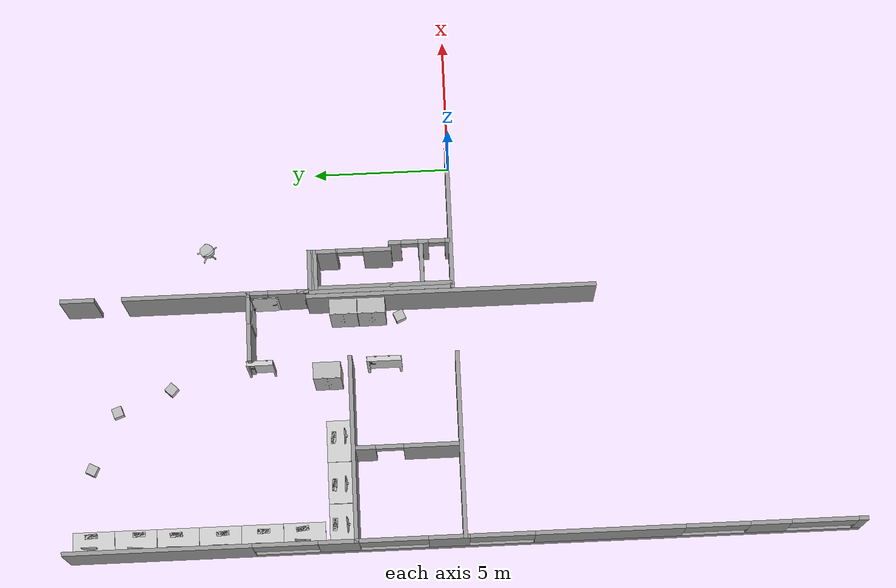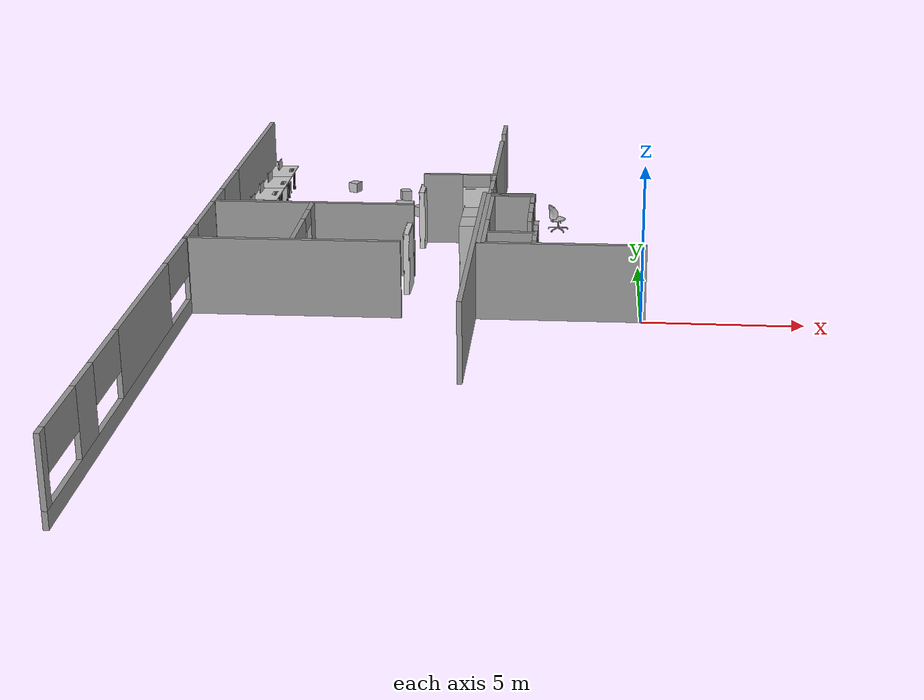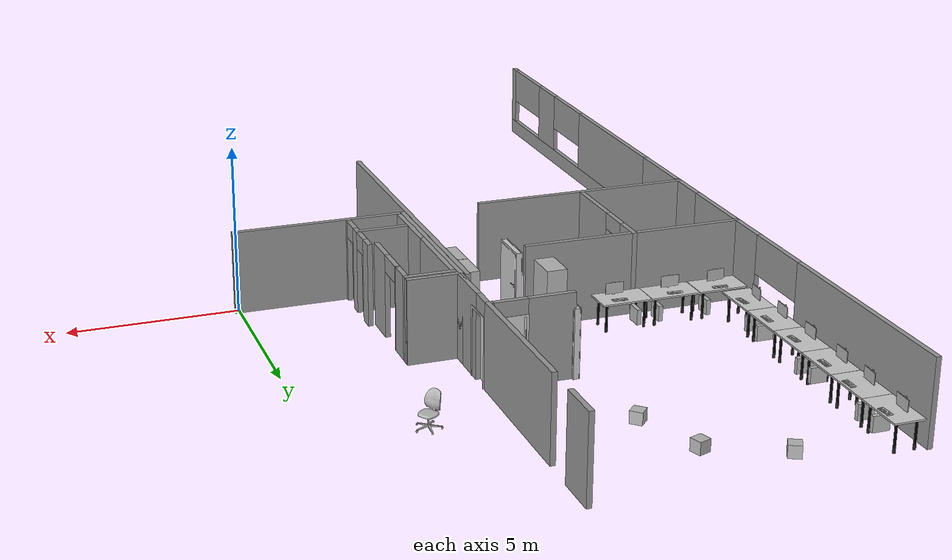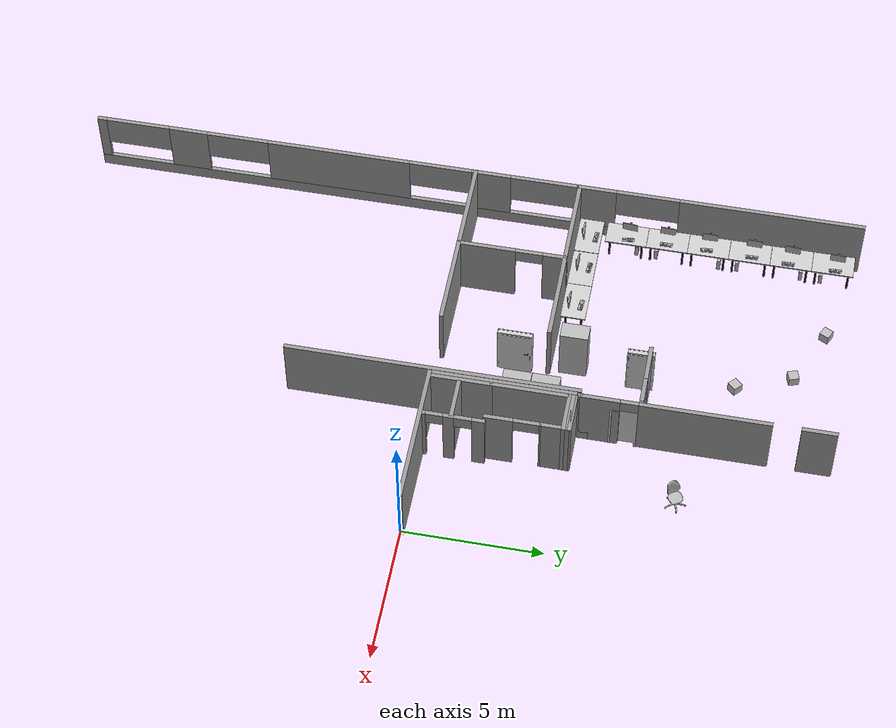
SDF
<sdf version="1.6">
 <world name="default">
  <model name="basement">
   <link name="Wall_1">
    <pose>-14.1254 0.001772 0 0 0 -1.5708</pose>
    <visual name="Wall_1_Visual_0">
     <pose>-10.8889 0 1.25 0 -0 0</pose>
     <geometry><box><size>6.72223 0.15 2.5</size></box></geometry>
     <material>
      <script><uri>file://media/materials/scripts/gazebo.material</uri><name>Gazebo/Grey</name></script>
      <ambient>1 1 1 1</ambient>
     </material>
    </visual>
    <collision name="Wall_1_Collision_0">
     <geometry><box><size>6.72223 0.15 2.5</size></box></geometry>
     <pose>-10.8889 0 1.25 0 -0 0</pose>
    </collision>
    <visual name="Wall_1_Visual_1">
     <pose>3.36112 0 0.25 0 -0 0</pose>
     <geometry><box><size>21.7778 0.15 0.5</size></box></geometry>
     <material>
      <script><uri>file://media/materials/scripts/gazebo.material</uri><name>Gazebo/Grey</name></script>
      <ambient>1 1 1 1</ambient>
     </material>
    </visual>
    <collision name="Wall_1_Collision_1">
     <geometry><box><size>21.7778 0.15 0.5</size></box></geometry>
     <pose>3.36112 0 0.25 0 -0 0</pose>
    </collision>
    <visual name="Wall_1_Visual_2">
     <pose>-4.48488 0 1.5 0 -0 0</pose>
     <geometry><box><size>1.45334 0.15 2</size></box></geometry>
     <material>
      <script><uri>file://media/materials/scripts/gazebo.material</uri><name>Gazebo/Grey</name></script>
      <ambient>1 1 1 1</ambient>
     </material>
    </visual>
    <collision name="Wall_1_Collision_2">
     <geometry><box><size>1.45334 0.15 2</size></box></geometry>
     <pose>-4.48488 0 1.5 0 -0 0</pose>
    </collision>
    <visual name="Wall_1_Visual_3">
     <pose>-0.57841 0 1.5 0 -0 0</pose>
     <geometry><box><size>1.45641 0.15 2</size></box></geometry>
     <material>
      <script><uri>file://media/materials/scripts/gazebo.material</uri><name>Gazebo/Grey</name></script>
      <ambient>1 1 1 1</ambient>
     </material>
    </visual>
    <collision name="Wall_1_Collision_3">
     <geometry><box><size>1.45641 0.15 2</size></box></geometry>
     <pose>-0.57841 0 1.5 0 -0 0</pose>
    </collision>
    <visual name="Wall_1_Visual_4">
     <pose>5.12077 0 1.5 0 -0 0</pose>
     <geometry><box><size>5.31789 0.15 2</size></box></geometry>
     <material>
      <script><uri>file://media/materials/scripts/gazebo.material</uri><name>Gazebo/Grey</name></script>
      <ambient>1 1 1 1</ambient>
     </material>
    </visual>
    <collision name="Wall_1_Collision_4">
     <geometry><box><size>5.31789 0.15 2</size></box></geometry>
     <pose>5.12077 0 1.5 0 -0 0</pose>
    </collision>
    <visual name="Wall_1_Visual_5">
     <pose>10.7967 0 1.5 0 -0 0</pose>
     <geometry><box><size>1.45641 0.15 2</size></box></geometry>
     <material>
      <script><uri>file://media/materials/scripts/gazebo.material</uri><name>Gazebo/Grey</name></script>
      <ambient>1 1 1 1</ambient>
     </material>
    </visual>
    <collision name="Wall_1_Collision_5">
     <geometry><box><size>1.45641 0.15 2</size></box></geometry>
     <pose>10.7967 0 1.5 0 -0 0</pose>
    </collision>
    <visual name="Wall_1_Visual_6">
     <pose>14.0784 0 1.5 0 -0 0</pose>
     <geometry><box><size>0.343295 0.15 2</size></box></geometry>
     <material>
      <script><uri>file://media/materials/scripts/gazebo.material</uri><name>Gazebo/Grey</name></script>
      <ambient>1 1 1 1</ambient>
     </material>
    </visual>
    <collision name="Wall_1_Collision_6">
     <geometry><box><size>0.343295 0.15 2</size></box></geometry>
     <pose>14.0784 0 1.5 0 -0 0</pose>
    </collision>
    <visual name="Wall_1_Visual_7">
     <pose>-6.36966 0 1.9 0 -0 0</pose>
     <geometry><box><size>2.31621 0.15 1.2</size></box></geometry>
     <material>
      <script><uri>file://media/materials/scripts/gazebo.material</uri><name>Gazebo/Grey</name></script>
      <ambient>1 1 1 1</ambient>
     </material>
    </visual>
    <collision name="Wall_1_Collision_7">
     <geometry><box><size>2.31621 0.15 1.2</size></box></geometry>
     <pose>-6.36966 0 1.9 0 -0 0</pose>
    </collision>
    <visual name="Wall_1_Visual_8">
     <pose>-2.53241 0 1.9 0 -0 0</pose>
     <geometry><box><size>2.4516 0.15 1.2</size></box></geometry>
     <material>
      <script><uri>file://media/materials/scripts/gazebo.material</uri><name>Gazebo/Grey</name></script>
      <ambient>1 1 1 1</ambient>
     </material>
    </visual>
    <collision name="Wall_1_Collision_8">
     <geometry><box><size>2.4516 0.15 1.2</size></box></geometry>
     <pose>-2.53241 0 1.9 0 -0 0</pose>
    </collision>
    <visual name="Wall_1_Visual_9">
     <pose>1.30581 0 1.9 0 -0 0</pose>
     <geometry><box><size>2.31203 0.15 1.2</size></box></geometry>
     <material>
      <script><uri>file://media/materials/scripts/gazebo.material</uri><name>Gazebo/Grey</name></script>
      <ambient>1 1 1 1</ambient>
     </material>
    </visual>
    <collision name="Wall_1_Collision_9">
     <geometry><box><size>2.31203 0.15 1.2</size></box></geometry>
     <pose>1.30581 0 1.9 0 -0 0</pose>
    </collision>
    <visual name="Wall_1_Visual_10">
     <pose>8.9241 0 1.9 0 -0 0</pose>
     <geometry><box><size>2.28877 0.15 1.2</size></box></geometry>
     <material>
      <script><uri>file://media/materials/scripts/gazebo.material</uri><name>Gazebo/Grey</name></script>
      <ambient>1 1 1 1</ambient>
     </material>
    </visual>
    <collision name="Wall_1_Collision_10">
     <geometry><box><size>2.28877 0.15 1.2</size></box></geometry>
     <pose>8.9241 0 1.9 0 -0 0</pose>
    </collision>
    <visual name="Wall_1_Visual_11">
     <pose>12.7158 0 1.9 0 -0 0</pose>
     <geometry><box><size>2.38181 0.15 1.2</size></box></geometry>
     <material>
      <script><uri>file://media/materials/scripts/gazebo.material</uri><name>Gazebo/Grey</name></script>
      <ambient>1 1 1 1</ambient>
     </material>
    </visual>
    <collision name="Wall_1_Collision_11">
     <geometry><box><size>2.38181 0.15 1.2</size></box></geometry>
     <pose>12.7158 0 1.9 0 -0 0</pose>
    </collision>
   </link>
   <link name="Wall_146">
    <collision name="Wall_146_Collision">
     <geometry><box><size>5.25 0.15 2.5</size></box></geometry>
     <pose>0 0 1.25 0 -0 0</pose>
    </collision>
    <visual name="Wall_146_Visual">
     <pose>0 0 1.25 0 -0 0</pose>
     <geometry><box><size>5.25 0.15 2.5</size></box></geometry>
     <material>
      <script><uri>file://media/materials/scripts/gazebo.material</uri><name>Gazebo/Grey</name></script>
      <ambient>1 1 1 1</ambient>
     </material>
    </visual>
    <pose>-5.04892 2.61682 0 0 -0 1.5708</pose>
   </link>
   <link name="Wall_148">
    <collision name="Wall_148_Collision">
     <geometry><box><size>1.5 0.15 2.5</size></box></geometry>
     <pose>0 0 1.25 0 -0 0</pose>
    </collision>
    <visual name="Wall_148_Visual">
     <pose>0 0 1.25 0 -0 0</pose>
     <geometry><box><size>1.5 0.15 2.5</size></box></geometry>
     <material>
      <script><uri>file://media/materials/scripts/gazebo.material</uri><name>Gazebo/Grey</name></script>
      <ambient>1 1 1 1</ambient>
     </material>
    </visual>
    <pose>-4.23612 5.13065 0 0 -0 0</pose>
   </link>
   <link name="Wall_150">
    <collision name="Wall_150_Collision">
     <geometry><box><size>1.5 0.15 2.5</size></box></geometry>
     <pose>0 0 1.25 0 -0 0</pose>
    </collision>
    <visual name="Wall_150_Visual">
     <pose>0 0 1.25 0 -0 0</pose>
     <geometry><box><size>1.5 0.15 2.5</size></box></geometry>
     <material>
      <script><uri>file://media/materials/scripts/gazebo.material</uri><name>Gazebo/Grey</name></script>
      <ambient>1 1 1 1</ambient>
     </material>
    </visual>
    <pose>-4.23669 5.20302 0 0 -0 0</pose>
   </link>
   <link name="Wall_152">
    <collision name="Wall_152_Collision">
     <geometry><box><size>5.25 0.15 2.5</size></box></geometry>
     <pose>0 0 1.25 0 -0 0</pose>
    </collision>
    <visual name="Wall_152_Visual">
     <pose>0 0 1.25 0 -0 0</pose>
     <geometry><box><size>5.25 0.15 2.5</size></box></geometry>
     <material>
      <script><uri>file://media/materials/scripts/gazebo.material</uri><name>Gazebo/Grey</name></script>
      <ambient>1 1 1 1</ambient>
     </material>
    </visual>
    <pose>-2.49774 0.066434 0 0 -0 0</pose>
   </link>
   <link name="Wall_17">
    <collision name="Wall_17_Collision">
     <geometry><box><size>6.75 0.15 2.5</size></box></geometry>
     <pose>0 0 1.25 0 -0 0</pose>
    </collision>
    <visual name="Wall_17_Visual">
     <pose>0 0 1.25 0 -0 0</pose>
     <geometry><box><size>6.75 0.15 2.5</size></box></geometry>
     <material>
      <script><uri>file://media/materials/scripts/gazebo.material</uri><name>Gazebo/Grey</name></script>
      <ambient>1 1 1 1</ambient>
     </material>
    </visual>
    <pose>-10.8156 0.004484 0 0 -0 0</pose>
   </link>
   <link name="Wall_19">
    <collision name="Wall_19_Collision">
     <geometry><box><size>6.75 0.15 2.5</size></box></geometry>
     <pose>0 0 1.25 0 -0 0</pose>
    </collision>
    <visual name="Wall_19_Visual">
     <pose>0 0 1.25 0 -0 0</pose>
     <geometry><box><size>6.75 0.15 2.5</size></box></geometry>
     <material>
      <script><uri>file://media/materials/scripts/gazebo.material</uri><name>Gazebo/Grey</name></script>
      <ambient>1 1 1 1</ambient>
     </material>
    </visual>
    <pose>-10.8156 3.85656 0 0 -0 0</pose>
   </link>
   <link name="Wall_21">
    <pose>-10.8088 1.93156 0 0 0 -1.5708</pose>
    <visual name="Wall_21_Visual_0">
     <pose>-1.56265 0 1.25 0 -0 0</pose>
     <geometry><box><size>0.874704 0.15 2.5</size></box></geometry>
     <material>
      <script><uri>file://media/materials/scripts/gazebo.material</uri><name>Gazebo/Grey</name></script>
      <ambient>1 1 1 1</ambient>
     </material>
    </visual>
    <collision name="Wall_21_Collision_0">
     <geometry><box><size>0.874704 0.15 2.5</size></box></geometry>
     <pose>-1.56265 0 1.25 0 -0 0</pose>
    </collision>
    <visual name="Wall_21_Visual_1">
     <pose>0.933876 0 1.25 0 -0 0</pose>
     <geometry><box><size>2.13225 0.15 2.5</size></box></geometry>
     <material>
      <script><uri>file://media/materials/scripts/gazebo.material</uri><name>Gazebo/Grey</name></script>
      <ambient>1 1 1 1</ambient>
     </material>
    </visual>
    <collision name="Wall_21_Collision_1">
     <geometry><box><size>2.13225 0.15 2.5</size></box></geometry>
     <pose>0.933876 0 1.25 0 -0 0</pose>
    </collision>
    <visual name="Wall_21_Visual_2">
     <pose>-0.628773 0 2.25 0 -0 0</pose>
     <geometry><box><size>0.993048 0.15 0.5</size></box></geometry>
     <material>
      <script><uri>file://media/materials/scripts/gazebo.material</uri><name>Gazebo/Grey</name></script>
      <ambient>1 1 1 1</ambient>
     </material>
    </visual>
    <collision name="Wall_21_Collision_2">
     <geometry><box><size>0.993048 0.15 0.5</size></box></geometry>
     <pose>-0.628773 0 2.25 0 -0 0</pose>
    </collision>
   </link>
   <link name="Wall_23">
    <pose>-5.00676 8.62969 0 0 0 -1.5708</pose>
    <visual name="Wall_23_Visual_0">
     <pose>-1.06412 0 1.25 0 -0 0</pose>
     <geometry><box><size>4.62176 0.15 2.5</size></box></geometry>
     <material>
      <script><uri>file://media/materials/scripts/gazebo.material</uri><name>Gazebo/Grey</name></script>
      <ambient>1 1 1 1</ambient>
     </material>
    </visual>
    <collision name="Wall_23_Collision_0">
     <geometry><box><size>4.62176 0.15 2.5</size></box></geometry>
     <pose>-1.06412 0 1.25 0 -0 0</pose>
    </collision>
    <visual name="Wall_23_Visual_1">
     <pose>2.63296 0 1.25 0 -0 0</pose>
     <geometry><box><size>1.48408 0.15 2.5</size></box></geometry>
     <material>
      <script><uri>file://media/materials/scripts/gazebo.material</uri><name>Gazebo/Grey</name></script>
      <ambient>1 1 1 1</ambient>
     </material>
    </visual>
    <collision name="Wall_23_Collision_1">
     <geometry><box><size>1.48408 0.15 2.5</size></box></geometry>
     <pose>2.63296 0 1.25 0 -0 0</pose>
    </collision>
    <visual name="Wall_23_Visual_2">
     <pose>3.15649 0 1.25 0 -0 0</pose>
     <geometry><box><size>0.437027 0.15 2.5</size></box></geometry>
     <material>
      <script><uri>file://media/materials/scripts/gazebo.material</uri><name>Gazebo/Grey</name></script>
      <ambient>1 1 1 1</ambient>
     </material>
    </visual>
    <collision name="Wall_23_Collision_2">
     <geometry><box><size>0.437027 0.15 2.5</size></box></geometry>
     <pose>3.15649 0 1.25 0 -0 0</pose>
    </collision>
    <visual name="Wall_23_Visual_3">
     <pose>1.56762 0 2.25 0 -0 0</pose>
     <geometry><box><size>0.641714 0.15 0.5</size></box></geometry>
     <material>
      <script><uri>file://media/materials/scripts/gazebo.material</uri><name>Gazebo/Grey</name></script>
      <ambient>1 1 1 1</ambient>
     </material>
    </visual>
    <collision name="Wall_23_Collision_3">
     <geometry><box><size>0.641714 0.15 0.5</size></box></geometry>
     <pose>1.56762 0 2.25 0 -0 0</pose>
    </collision>
   </link>
   <link name="Wall_25">
    <pose>-6.22027 7.45768 0 0 -0 0</pose>
    <visual name="Wall_25_Visual_0">
     <pose>-0.572125 0 1.25 0 -0 0</pose>
     <geometry><box><size>1.35575 0.15 2.5</size></box></geometry>
     <material>
      <script><uri>file://media/materials/scripts/gazebo.material</uri><name>Gazebo/Grey</name></script>
      <ambient>1 1 1 1</ambient>
     </material>
    </visual>
    <collision name="Wall_25_Collision_0">
     <geometry><box><size>1.35575 0.15 2.5</size></box></geometry>
     <pose>-0.572125 0 1.25 0 -0 0</pose>
    </collision>
    <visual name="Wall_25_Visual_1">
     <pose>1.16237 0 1.25 0 -0 0</pose>
     <geometry><box><size>0.17525 0.15 2.5</size></box></geometry>
     <material>
      <script><uri>file://media/materials/scripts/gazebo.material</uri><name>Gazebo/Grey</name></script>
      <ambient>1 1 1 1</ambient>
     </material>
    </visual>
    <collision name="Wall_25_Collision_1">
     <geometry><box><size>0.17525 0.15 2.5</size></box></geometry>
     <pose>1.16237 0 1.25 0 -0 0</pose>
    </collision>
    <visual name="Wall_25_Visual_2">
     <pose>0.59025 0 2.25 0 -0 0</pose>
     <geometry><box><size>0.969 0.15 0.5</size></box></geometry>
     <material>
      <script><uri>file://media/materials/scripts/gazebo.material</uri><name>Gazebo/Grey</name></script>
      <ambient>1 1 1 1</ambient>
     </material>
    </visual>
    <collision name="Wall_25_Collision_2">
     <geometry><box><size>0.969 0.15 0.5</size></box></geometry>
     <pose>0.59025 0 2.25 0 -0 0</pose>
    </collision>
   </link>
   <link name="Wall_27">
    <collision name="Wall_27_Collision">
     <geometry><box><size>1.25 0.15 2.5</size></box></geometry>
     <pose>0 0 1.25 0 -0 0</pose>
    </collision>
    <visual name="Wall_27_Visual">
     <pose>0 0 1.25 0 -0 0</pose>
     <geometry><box><size>1.25 0.15 2.5</size></box></geometry>
     <material>
      <script><uri>file://media/materials/scripts/gazebo.material</uri><name>Gazebo/Grey</name></script>
      <ambient>1 1 1 1</ambient>
     </material>
    </visual>
    <pose>-4.99983 13.6109 0 0 -0 1.5708</pose>
   </link>
   <link name="Wall_29">
    <collision name="Wall_29_Collision">
     <geometry><box><size>10.5 0.15 2.5</size></box></geometry>
     <pose>0 0 1.25 0 -0 0</pose>
    </collision>
    <visual name="Wall_29_Visual">
     <pose>0 0 1.25 0 -0 0</pose>
     <geometry><box><size>10.5 0.15 2.5</size></box></geometry>
     <material>
      <script><uri>file://media/materials/scripts/gazebo.material</uri><name>Gazebo/Grey</name></script>
      <ambient>1 1 1 1</ambient>
     </material>
    </visual>
    <pose>-5.20099 0.119525 0 0 0 -1.5708</pose>
   </link>
   <link name="Wall_47">
    <collision name="Wall_47_Collision">
     <geometry><box><size>2.75 0.15 2.5</size></box></geometry>
     <pose>0 0 1.25 0 -0 0</pose>
    </collision>
    <visual name="Wall_47_Visual">
     <pose>0 0 1.25 0 -0 0</pose>
     <geometry><box><size>2.75 0.15 2.5</size></box></geometry>
     <material>
      <script><uri>file://media/materials/scripts/gazebo.material</uri><name>Gazebo/Grey</name></script>
      <ambient>1 1 1 1</ambient>
     </material>
    </visual>
    <pose>-4.91322 3.5855 0 0 0 -1.5708</pose>
   </link>
   <link name="Wall_55">
    <collision name="Wall_55_Collision">
     <geometry><box><size>0.75 0.15 2.5</size></box></geometry>
     <pose>0 0 1.25 0 -0 0</pose>
    </collision>
    <visual name="Wall_55_Visual">
     <pose>0 0 1.25 0 -0 0</pose>
     <geometry><box><size>0.75 0.15 2.5</size></box></geometry>
     <material>
      <script><uri>file://media/materials/scripts/gazebo.material</uri><name>Gazebo/Grey</name></script>
      <ambient>1 1 1 1</ambient>
     </material>
    </visual>
    <pose>-3.56641 4.59591 0 0 0 -1.5708</pose>
   </link>
   <link name="Wall_57">
    <collision name="Wall_57_Collision">
     <geometry><box><size>1.5 0.15 2.5</size></box></geometry>
     <pose>0 0 1.25 0 -0 0</pose>
    </collision>
    <visual name="Wall_57_Visual">
     <pose>0 0 1.25 0 -0 0</pose>
     <geometry><box><size>1.5 0.15 2.5</size></box></geometry>
     <material>
      <script><uri>file://media/materials/scripts/gazebo.material</uri><name>Gazebo/Grey</name></script>
      <ambient>1 1 1 1</ambient>
     </material>
    </visual>
    <pose>-4.23706 4.99373 0 0 -0 0</pose>
   </link>
   <link name="Wall_59">
    <pose>-3.56584 3.2285 0 0 -0 1.5708</pose>
    <visual name="Wall_59_Visual_0">
     <pose>-0.488849 0 1.25 0 -0 0</pose>
     <geometry><box><size>1.0223 0.15 2.5</size></box></geometry>
     <material>
      <script><uri>file://media/materials/scripts/gazebo.material</uri><name>Gazebo/Grey</name></script>
      <ambient>1 1 1 1</ambient>
     </material>
    </visual>
    <collision name="Wall_59_Collision_0">
     <geometry><box><size>1.0223 0.15 2.5</size></box></geometry>
     <pose>-0.488849 0 1.25 0 -0 0</pose>
    </collision>
    <visual name="Wall_59_Visual_1">
     <pose>0.972494 0 1.25 0 -0 0</pose>
     <geometry><box><size>0.055013 0.15 2.5</size></box></geometry>
     <material>
      <script><uri>file://media/materials/scripts/gazebo.material</uri><name>Gazebo/Grey</name></script>
      <ambient>1 1 1 1</ambient>
     </material>
    </visual>
    <collision name="Wall_59_Collision_1">
     <geometry><box><size>0.055013 0.15 2.5</size></box></geometry>
     <pose>0.972494 0 1.25 0 -0 0</pose>
    </collision>
    <visual name="Wall_59_Visual_2">
     <pose>0.483645 0 2.25 0 -0 0</pose>
     <geometry><box><size>0.922684 0.15 0.5</size></box></geometry>
     <material>
      <script><uri>file://media/materials/scripts/gazebo.material</uri><name>Gazebo/Grey</name></script>
      <ambient>1 1 1 1</ambient>
     </material>
    </visual>
    <collision name="Wall_59_Collision_2">
     <geometry><box><size>0.922684 0.15 0.5</size></box></geometry>
     <pose>0.483645 0 2.25 0 -0 0</pose>
    </collision>
   </link>
   <link name="Wall_61">
    <collision name="Wall_61_Collision">
     <geometry><box><size>2.25 0.15 2.5</size></box></geometry>
     <pose>0 0 1.25 0 -0 0</pose>
    </collision>
    <visual name="Wall_61_Visual">
     <pose>0 0 1.25 0 -0 0</pose>
     <geometry><box><size>2.25 0.15 2.5</size></box></geometry>
     <material>
      <script><uri>file://media/materials/scripts/gazebo.material</uri><name>Gazebo/Grey</name></script>
      <ambient>1 1 1 1</ambient>
     </material>
    </visual>
    <pose>-4.90974 1.19358 0 0 -0 1.5708</pose>
   </link>
   <link name="Wall_67">
    <pose>-3.33938 1.20265 0 0 -0 1.5708</pose>
    <visual name="Wall_67_Visual_0">
     <pose>-1.03247 0 1.25 0 -0 0</pose>
     <geometry><box><size>0.185068 0.15 2.5</size></box></geometry>
     <material>
      <script><uri>file://media/materials/scripts/gazebo.material</uri><name>Gazebo/Grey</name></script>
      <ambient>1 1 1 1</ambient>
     </material>
    </visual>
    <collision name="Wall_67_Collision_0">
     <geometry><box><size>0.185068 0.15 2.5</size></box></geometry>
     <pose>-1.03247 0 1.25 0 -0 0</pose>
    </collision>
    <visual name="Wall_67_Visual_1">
     <pose>-0.143595 0 1.25 0 -0 0</pose>
     <geometry><box><size>0.386655 0.15 2.5</size></box></geometry>
     <material>
      <script><uri>file://media/materials/scripts/gazebo.material</uri><name>Gazebo/Grey</name></script>
      <ambient>1 1 1 1</ambient>
     </material>
    </visual>
    <collision name="Wall_67_Collision_1">
     <geometry><box><size>0.386655 0.15 2.5</size></box></geometry>
     <pose>-0.143595 0 1.25 0 -0 0</pose>
    </collision>
    <visual name="Wall_67_Visual_2">
     <pose>0.892631 0 1.25 0 -0 0</pose>
     <geometry><box><size>0.464739 0.15 2.5</size></box></geometry>
     <material>
      <script><uri>file://media/materials/scripts/gazebo.material</uri><name>Gazebo/Grey</name></script>
      <ambient>1 1 1 1</ambient>
     </material>
    </visual>
    <collision name="Wall_67_Collision_2">
     <geometry><box><size>0.464739 0.15 2.5</size></box></geometry>
     <pose>0.892631 0 1.25 0 -0 0</pose>
    </collision>
    <visual name="Wall_67_Visual_3">
     <pose>-0.638427 0 2.25 0 -0 0</pose>
     <geometry><box><size>0.60301 0.15 0.5</size></box></geometry>
     <material>
      <script><uri>file://media/materials/scripts/gazebo.material</uri><name>Gazebo/Grey</name></script>
      <ambient>1 1 1 1</ambient>
     </material>
    </visual>
    <collision name="Wall_67_Collision_3">
     <geometry><box><size>0.60301 0.15 0.5</size></box></geometry>
     <pose>-0.638427 0 2.25 0 -0 0</pose>
    </collision>
    <visual name="Wall_67_Visual_4">
     <pose>0.354997 0 2.25 0 -0 0</pose>
     <geometry><box><size>0.610528 0.15 0.5</size></box></geometry>
     <material>
      <script><uri>file://media/materials/scripts/gazebo.material</uri><name>Gazebo/Grey</name></script>
      <ambient>1 1 1 1</ambient>
     </material>
    </visual>
    <collision name="Wall_67_Collision_4">
     <geometry><box><size>0.610528 0.15 0.5</size></box></geometry>
     <pose>0.354997 0 2.25 0 -0 0</pose>
    </collision>
   </link>
   <link name="Wall_69">
    <collision name="Wall_69_Collision">
     <geometry><box><size>1.5 0.15 2.5</size></box></geometry>
     <pose>0 0 1.25 0 -0 0</pose>
    </collision>
    <visual name="Wall_69_Visual">
     <pose>0 0 1.25 0 -0 0</pose>
     <geometry><box><size>1.5 0.15 2.5</size></box></geometry>
     <material>
      <script><uri>file://media/materials/scripts/gazebo.material</uri><name>Gazebo/Grey</name></script>
      <ambient>1 1 1 1</ambient>
     </material>
    </visual>
    <pose>-4.10188 1.14165 0 0 -0 0</pose>
   </link>
   <static>1</static>
  </model>
  <model name="wardrobe">
   <link name="link">
    <visual name="visual">
     <geometry><mesh><uri>model://cabinet/meshes/cabinet.dae</uri><scale>1 1 1</scale></mesh></geometry>
    </visual>
    <collision name="collision">
     <geometry><mesh><uri>model://cabinet/meshes/cabinet.dae</uri><scale>1 1 1</scale></mesh></geometry>
    </collision>
   </link>
   <static>1</static>
   <pose>-7.88879 4.71222 0 0 0 -1.5707</pose>
  </model>
  <model name="wardrobe_0">
   <link name="link">
    <visual name="visual">
     <geometry><mesh><uri>model://cabinet/meshes/cabinet.dae</uri><scale>1 1 1</scale></mesh></geometry>
    </visual>
    <collision name="collision">
     <geometry><mesh><uri>model://cabinet/meshes/cabinet.dae</uri><scale>1 1 1</scale></mesh></geometry>
    </collision>
   </link>
   <static>1</static>
   <pose>-5.55 4.05207 0 0 0 -1.5707</pose>
  </model>
  <model name="wardrobe_1">
   <link name="link">
    <visual name="visual">
     <geometry><mesh><uri>model://cabinet/meshes/cabinet.dae</uri><scale>1 1 1</scale></mesh></geometry>
    </visual>
    <collision name="collision">
     <geometry><mesh><uri>model://cabinet/meshes/cabinet.dae</uri><scale>1 1 1</scale></mesh></geometry>
    </collision>
   </link>
   <static>1</static>
   <pose>-5.55012 3.03744 0 0 0 -1.5707</pose>
  </model>
  <model name="office_table">
   <link name="link">
    <visual name="visual">
     <geometry><mesh><uri>model://office_table/meshes/office_table.dae</uri><scale>1 1 1</scale></mesh></geometry>
    </visual>
    <collision name="collision">
     <geometry><mesh><uri>model://office_table/meshes/office_table.dae</uri><scale>1 1 1</scale></mesh></geometry>
    </collision>
   </link>
   <static>1</static>
   <pose>-13.5998 10.3558 0 0 -0 1.5707</pose>
  </model>
  <model name="office_table_0">
   <link name="link">
    <visual name="visual">
     <geometry><mesh><uri>model://office_table/meshes/office_table.dae</uri><scale>1 1 1</scale></mesh></geometry>
    </visual>
    <collision name="collision">
     <geometry><mesh><uri>model://office_table/meshes/office_table.dae</uri><scale>1 1 1</scale></mesh></geometry>
    </collision>
   </link>
   <static>1</static>
   <pose>-13.6 5.80688 0 0 -0 1.5707</pose>
  </model>
  <model name="office_table_1">
   <link name="link">
    <visual name="visual">
     <geometry><mesh><uri>model://office_table/meshes/office_table.dae</uri><scale>1 1 1</scale></mesh></geometry>
    </visual>
    <collision name="collision">
     <geometry><mesh><uri>model://office_table/meshes/office_table.dae</uri><scale>1 1 1</scale></mesh></geometry>
    </collision>
   </link>
   <static>1</static>
   <pose>-13.6 7.32319 0 0 -0 1.5707</pose>
  </model>
  <model name="office_table_2">
   <link name="link">
    <visual name="visual">
     <geometry><mesh><uri>model://office_table/meshes/office_table.dae</uri><scale>1 1 1</scale></mesh></geometry>
    </visual>
    <collision name="collision">
     <geometry><mesh><uri>model://office_table/meshes/office_table.dae</uri><scale>1 1 1</scale></mesh></geometry>
    </collision>
   </link>
   <static>1</static>
   <pose>-10.1891 4.4 0 0 -0 0</pose>
  </model>
  <model name="office_table_3">
   <link name="link">
    <visual name="visual">
     <geometry><mesh><uri>model://office_table/meshes/office_table.dae</uri><scale>1 1 1</scale></mesh></geometry>
    </visual>
    <collision name="collision">
     <geometry><mesh><uri>model://office_table/meshes/office_table.dae</uri><scale>1 1 1</scale></mesh></geometry>
    </collision>
   </link>
   <static>1</static>
   <pose>-13.5997 11.8755 0 0 -0 1.5707</pose>
  </model>
  <model name="office_table_4">
   <link name="link">
    <visual name="visual">
     <geometry><mesh><uri>model://office_table/meshes/office_table.dae</uri><scale>1 1 1</scale></mesh></geometry>
    </visual>
    <collision name="collision">
     <geometry><mesh><uri>model://office_table/meshes/office_table.dae</uri><scale>1 1 1</scale></mesh></geometry>
    </collision>
   </link>
   <static>1</static>
   <pose>-13.5998 8.83935 0 0 -0 1.5707</pose>
  </model>
  <model name="office_table_5">
   <link name="link">
    <visual name="visual">
     <geometry><mesh><uri>model://office_table/meshes/office_table.dae</uri><scale>1 1 1</scale></mesh></geometry>
    </visual>
    <collision name="collision">
     <geometry><mesh><uri>model://office_table/meshes/office_table.dae</uri><scale>1 1 1</scale></mesh></geometry>
    </collision>
   </link>
   <static>1</static>
   <pose>-11.7071 4.4 0 0 -0 0</pose>
  </model>
  <model name="office_table_6">
   <link name="link">
    <visual name="visual">
     <geometry><mesh><uri>model://office_table/meshes/office_table.dae</uri><scale>1 1 1</scale></mesh></geometry>
    </visual>
    <collision name="collision">
     <geometry><mesh><uri>model://office_table/meshes/office_table.dae</uri><scale>1 1 1</scale></mesh></geometry>
    </collision>
   </link>
   <static>1</static>
   <pose>-13.2354 4.4 0 0 -0 0</pose>
  </model>
  <model name="office_table_7">
   <link name="link">
    <visual name="visual">
     <geometry><mesh><uri>model://office_table/meshes/office_table.dae</uri><scale>1 1 1</scale></mesh></geometry>
    </visual>
    <collision name="collision">
     <geometry><mesh><uri>model://office_table/meshes/office_table.dae</uri><scale>1 1 1</scale></mesh></geometry>
    </collision>
   </link>
   <static>1</static>
   <pose>-13.5998 13.393 0 0 -0 1.5707</pose>
  </model>
  <model name="pc">
   <link name="link">
    <visual name="visual">
     <geometry><mesh><uri>model://pc/meshes/pc.dae</uri><scale>1 1 1</scale></mesh></geometry>
    </visual>
    <collision name="collision">
     <geometry><mesh><uri>model://pc/meshes/pc.dae</uri><scale>1 1 1</scale></mesh></geometry>
    </collision>
   </link>
   <static>1</static>
   <pose>-11.3419 4.48606 0 0 -0 3.141</pose>
  </model>
  <model name="pc_0">
   <link name="link">
    <visual name="visual">
     <geometry><mesh><uri>model://pc/meshes/pc.dae</uri><scale>1 1 1</scale></mesh></geometry>
    </visual>
    <collision name="collision">
     <geometry><mesh><uri>model://pc/meshes/pc.dae</uri><scale>1 1 1</scale></mesh></geometry>
    </collision>
   </link>
   <static>1</static>
   <pose>-12.8626 4.49995 0 0 -0 3.141</pose>
  </model>
  <model name="pc_1">
   <link name="link">
    <visual name="visual">
     <geometry><mesh><uri>model://pc/meshes/pc.dae</uri><scale>1 1 1</scale></mesh></geometry>
    </visual>
    <collision name="collision">
     <geometry><mesh><uri>model://pc/meshes/pc.dae</uri><scale>1 1 1</scale></mesh></geometry>
    </collision>
   </link>
   <static>1</static>
   <pose>-10.6413 4.52563 0 0 -0 3.141</pose>
  </model>
  <model name="pc_2">
   <link name="link">
    <visual name="visual">
     <geometry><mesh><uri>model://pc/meshes/pc.dae</uri><scale>1 1 1</scale></mesh></geometry>
    </visual>
    <collision name="collision">
     <geometry><mesh><uri>model://pc/meshes/pc.dae</uri><scale>1 1 1</scale></mesh></geometry>
    </collision>
   </link>
   <static>1</static>
   <pose>-13.5783 6.16697 0 0 -0 1.5707</pose>
  </model>
  <model name="pc_3">
   <link name="link">
    <visual name="visual">
     <geometry><mesh><uri>model://pc/meshes/pc.dae</uri><scale>1 1 1</scale></mesh></geometry>
    </visual>
    <collision name="collision">
     <geometry><mesh><uri>model://pc/meshes/pc.dae</uri><scale>1 1 1</scale></mesh></geometry>
    </collision>
   </link>
   <static>1</static>
   <pose>-13.5256 6.88608 0 0 -0 1.5707</pose>
  </model>
  <model name="pc_4">
   <link name="link">
    <visual name="visual">
     <geometry><mesh><uri>model://pc/meshes/pc.dae</uri><scale>1 1 1</scale></mesh></geometry>
    </visual>
    <collision name="collision">
     <geometry><mesh><uri>model://pc/meshes/pc.dae</uri><scale>1 1 1</scale></mesh></geometry>
    </collision>
   </link>
   <static>1</static>
   <pose>-13.5073 9.87994 0 0 -0 1.5707</pose>
  </model>
  <model name="pc_5">
   <link name="link">
    <visual name="visual">
     <geometry><mesh><uri>model://pc/meshes/pc.dae</uri><scale>1 1 1</scale></mesh></geometry>
    </visual>
    <collision name="collision">
     <geometry><mesh><uri>model://pc/meshes/pc.dae</uri><scale>1 1 1</scale></mesh></geometry>
    </collision>
   </link>
   <static>1</static>
   <pose>-13.5206 12.2188 0 0 -0 1.5707</pose>
  </model>
  <model name="pc_6">
   <link name="link">
    <visual name="visual">
     <geometry><mesh><uri>model://pc/meshes/pc.dae</uri><scale>1 1 1</scale></mesh></geometry>
    </visual>
    <collision name="collision">
     <geometry><mesh><uri>model://pc/meshes/pc.dae</uri><scale>1 1 1</scale></mesh></geometry>
    </collision>
   </link>
   <static>1</static>
   <pose>-13.5138 12.9492 0 0 -0 1.5707</pose>
  </model>
  <model name="pc_7">
   <link name="link">
    <visual name="visual">
     <geometry><mesh><uri>model://pc/meshes/pc.dae</uri><scale>1 1 1</scale></mesh></geometry>
    </visual>
    <collision name="collision">
     <geometry><mesh><uri>model://pc/meshes/pc.dae</uri><scale>1 1 1</scale></mesh></geometry>
    </collision>
   </link>
   <static>1</static>
   <pose>-13.4711 9.2109 0 0 -0 1.5707</pose>
  </model>
  <model name="monitor">
   <link name="link">
    <visual name="visual">
     <geometry><mesh><uri>model://monitor/meshes/monitor.dae</uri><scale>1 1 1</scale></mesh></geometry>
    </visual>
    <collision name="collision">
     <geometry><mesh><uri>model://monitor/meshes/monitor.dae</uri><scale>1 1 1</scale></mesh></geometry>
    </collision>
   </link>
   <static>1</static>
   <pose>-13.3236 4.21798 1 0 0 -3.07367</pose>
  </model>
  <model name="monitor_0">
   <link name="link">
    <visual name="visual">
     <geometry><mesh><uri>model://monitor/meshes/monitor.dae</uri><scale>1 1 1</scale></mesh></geometry>
    </visual>
    <collision name="collision">
     <geometry><mesh><uri>model://monitor/meshes/monitor.dae</uri><scale>1 1 1</scale></mesh></geometry>
    </collision>
   </link>
   <static>1</static>
   <pose>-11.842 4.2272 1 0 -0 3.12865</pose>
  </model>
  <model name="monitor_1">
   <link name="link">
    <visual name="visual">
     <geometry><mesh><uri>model://monitor/meshes/monitor.dae</uri><scale>1 1 1</scale></mesh></geometry>
    </visual>
    <collision name="collision">
     <geometry><mesh><uri>model://monitor/meshes/monitor.dae</uri><scale>1 1 1</scale></mesh></geometry>
    </collision>
   </link>
   <static>1</static>
   <pose>-10.0972 4.20184 1 0 0 -3.12724</pose>
  </model>
  <model name="monitor_2">
   <link name="link">
    <visual name="visual">
     <geometry><mesh><uri>model://monitor/meshes/monitor.dae</uri><scale>1 1 1</scale></mesh></geometry>
    </visual>
    <collision name="collision">
     <geometry><mesh><uri>model://monitor/meshes/monitor.dae</uri><scale>1 1 1</scale></mesh></geometry>
    </collision>
   </link>
   <static>1</static>
   <pose>-13.798 5.83031 1 0 -0 1.48637</pose>
  </model>
  <model name="monitor_3">
   <link name="link">
    <visual name="visual">
     <geometry><mesh><uri>model://monitor/meshes/monitor.dae</uri><scale>1 1 1</scale></mesh></geometry>
    </visual>
    <collision name="collision">
     <geometry><mesh><uri>model://monitor/meshes/monitor.dae</uri><scale>1 1 1</scale></mesh></geometry>
    </collision>
   </link>
   <static>1</static>
   <pose>-13.8598 10.4072 1 0 -0 1.53622</pose>
  </model>
  <model name="monitor_4">
   <link name="link">
    <visual name="visual">
     <geometry><mesh><uri>model://monitor/meshes/monitor.dae</uri><scale>1 1 1</scale></mesh></geometry>
    </visual>
    <collision name="collision">
     <geometry><mesh><uri>model://monitor/meshes/monitor.dae</uri><scale>1 1 1</scale></mesh></geometry>
    </collision>
   </link>
   <static>1</static>
   <pose>-13.7446 13.4732 1 0 -0 1.52654</pose>
  </model>
  <model name="monitor_5">
   <link name="link">
    <visual name="visual">
     <geometry><mesh><uri>model://monitor/meshes/monitor.dae</uri><scale>1 1 1</scale></mesh></geometry>
    </visual>
    <collision name="collision">
     <geometry><mesh><uri>model://monitor/meshes/monitor.dae</uri><scale>1 1 1</scale></mesh></geometry>
    </collision>
   </link>
   <static>1</static>
   <pose>-13.8225 11.8228 1 0 -0 1.50187</pose>
  </model>
  <model name="monitor_6">
   <link name="link">
    <visual name="visual">
     <geometry><mesh><uri>model://monitor/meshes/monitor.dae</uri><scale>1 1 1</scale></mesh></geometry>
    </visual>
    <collision name="collision">
     <geometry><mesh><uri>model://monitor/meshes/monitor.dae</uri><scale>1 1 1</scale></mesh></geometry>
    </collision>
   </link>
   <static>1</static>
   <pose>-13.8603 7.23139 1 0 -0 1.53421</pose>
  </model>
  <model name="monitor_7">
   <link name="link">
    <visual name="visual">
     <geometry><mesh><uri>model://monitor/meshes/monitor.dae</uri><scale>1 1 1</scale></mesh></geometry>
    </visual>
    <collision name="collision">
     <geometry><mesh><uri>model://monitor/meshes/monitor.dae</uri><scale>1 1 1</scale></mesh></geometry>
    </collision>
   </link>
   <static>1</static>
   <pose>-13.8577 8.77683 1 0 -0 1.56838</pose>
  </model>
  <model name="keyboard">
   <link name="link">
    <visual name="visual">
     <geometry><mesh><uri>model://keyboard/meshes/keyboard.dae</uri><scale>1 1 1</scale></mesh></geometry>
    </visual>
    <collision name="collision">
     <geometry><mesh><uri>model://keyboard/meshes/keyboard.dae</uri><scale>1 1 1</scale></mesh></geometry>
    </collision>
   </link>
   <static>1</static>
   <pose>-11.826 4.63551 0.78 0 -0 3.0713</pose>
  </model>
  <model name="keyboard_0">
   <link name="link">
    <visual name="visual">
     <geometry><mesh><uri>model://keyboard/meshes/keyboard.dae</uri><scale>1 1 1</scale></mesh></geometry>
    </visual>
    <collision name="collision">
     <geometry><mesh><uri>model://keyboard/meshes/keyboard.dae</uri><scale>1 1 1</scale></mesh></geometry>
    </collision>
   </link>
   <static>1</static>
   <pose>-13.3945 8.70757 0.78 0 -0 1.64663</pose>
  </model>
  <model name="keyboard_1">
   <link name="link">
    <visual name="visual">
     <geometry><mesh><uri>model://keyboard/meshes/keyboard.dae</uri><scale>1 1 1</scale></mesh></geometry>
    </visual>
    <collision name="collision">
     <geometry><mesh><uri>model://keyboard/meshes/keyboard.dae</uri><scale>1 1 1</scale></mesh></geometry>
    </collision>
   </link>
   <static>1</static>
   <pose>-13.2965 13.4345 0.78 0 -0 1.62981</pose>
  </model>
  <model name="keyboard_2">
   <link name="link">
    <visual name="visual">
     <geometry><mesh><uri>model://keyboard/meshes/keyboard.dae</uri><scale>1 1 1</scale></mesh></geometry>
    </visual>
    <collision name="collision">
     <geometry><mesh><uri>model://keyboard/meshes/keyboard.dae</uri><scale>1 1 1</scale></mesh></geometry>
    </collision>
   </link>
   <static>1</static>
   <pose>-13.3673 10.3759 0.78 0 -0 1.59558</pose>
  </model>
  <model name="keyboard_3">
   <link name="link">
    <visual name="visual">
     <geometry><mesh><uri>model://keyboard/meshes/keyboard.dae</uri><scale>1 1 1</scale></mesh></geometry>
    </visual>
    <collision name="collision">
     <geometry><mesh><uri>model://keyboard/meshes/keyboard.dae</uri><scale>1 1 1</scale></mesh></geometry>
    </collision>
   </link>
   <static>1</static>
   <pose>-13.2611 4.66284 0.78 0 -0 3.07383</pose>
  </model>
  <model name="keyboard_4">
   <link name="link">
    <visual name="visual">
     <geometry><mesh><uri>model://keyboard/meshes/keyboard.dae</uri><scale>1 1 1</scale></mesh></geometry>
    </visual>
    <collision name="collision">
     <geometry><mesh><uri>model://keyboard/meshes/keyboard.dae</uri><scale>1 1 1</scale></mesh></geometry>
    </collision>
   </link>
   <static>1</static>
   <pose>-10.0948 4.61573 0.78 0 -0 3.05121</pose>
  </model>
  <model name="keyboard_5">
   <link name="link">
    <visual name="visual">
     <geometry><mesh><uri>model://keyboard/meshes/keyboard.dae</uri><scale>1 1 1</scale></mesh></geometry>
    </visual>
    <collision name="collision">
     <geometry><mesh><uri>model://keyboard/meshes/keyboard.dae</uri><scale>1 1 1</scale></mesh></geometry>
    </collision>
   </link>
   <static>1</static>
   <pose>-13.3033 11.7124 0.78 0 -0 1.58421</pose>
  </model>
  <model name="keyboard_6">
   <link name="link">
    <visual name="visual">
     <geometry><mesh><uri>model://keyboard/meshes/keyboard.dae</uri><scale>1 1 1</scale></mesh></geometry>
    </visual>
    <collision name="collision">
     <geometry><mesh><uri>model://keyboard/meshes/keyboard.dae</uri><scale>1 1 1</scale></mesh></geometry>
    </collision>
   </link>
   <static>1</static>
   <pose>-13.3694 5.83224 0.78 0 0 -1.45503</pose>
  </model>
  <model name="keyboard_7">
   <link name="link">
    <visual name="visual">
     <geometry><mesh><uri>model://keyboard/meshes/keyboard.dae</uri><scale>1 1 1</scale></mesh></geometry>
    </visual>
    <collision name="collision">
     <geometry><mesh><uri>model://keyboard/meshes/keyboard.dae</uri><scale>1 1 1</scale></mesh></geometry>
    </collision>
   </link>
   <static>1</static>
   <pose>-13.3816 7.23251 0.78 0 -0 1.57888</pose>
  </model>
  <model name="doorxl">
   <link name="link">
    <visual name="visual">
     <geometry><mesh><uri>model://doorxl/meshes/doorxl.dae</uri><scale>1 1 1</scale></mesh></geometry>
    </visual>
    <collision name="collision">
     <geometry><mesh><uri>model://doorxl/meshes/doorxl.dae</uri><scale>1 1 1</scale></mesh></geometry>
    </collision>
   </link>
   <static>1</static>
   <pose>-7.51348 2.60723 0 0 -0 1.5707</pose>
  </model>
  <model name="door_4">
   <link name="link">
    <visual name="visual">
     <geometry><mesh><uri>model://door/meshes/door.dae</uri><scale>1 1 1</scale></mesh></geometry>
    </visual>
    <collision name="collision">
     <geometry><mesh><uri>model://door/meshes/door.dae</uri><scale>1 1 1</scale></mesh></geometry>
    </collision>
   </link>
   <static>1</static>
   <pose>-5.63433 7.46277 0 0 -0 0</pose>
  </model>
  <model name="door_5">
   <link name="link">
    <visual name="visual">
     <geometry><mesh><uri>model://door/meshes/door.dae</uri><scale>1 1 1</scale></mesh></geometry>
    </visual>
    <collision name="collision">
     <geometry><mesh><uri>model://door/meshes/door.dae</uri><scale>1 1 1</scale></mesh></geometry>
    </collision>
   </link>
   <static>1</static>
   <pose>-4.99793 6.89271 0 0 0 -1.5707</pose>
  </model>
  <model name="box">
   <link name="link">
    <visual name="visual">
     <geometry><mesh><uri>model://box/meshes/box.dae</uri><scale>1 1 1</scale></mesh></geometry>
    </visual>
    <collision name="collision">
     <geometry><mesh><uri>model://box/meshes/box.dae</uri><scale>1 1 1</scale></mesh></geometry>
    </collision>
   </link>
   <static>1</static>
   <pose>-8.68765 12.4895 0 0 -0 0.329383</pose>
  </model>
  <model name="box_0">
   <link name="link">
    <visual name="visual">
     <geometry><mesh><uri>model://box/meshes/box.dae</uri><scale>1 1 1</scale></mesh></geometry>
    </visual>
    <collision name="collision">
     <geometry><mesh><uri>model://box/meshes/box.dae</uri><scale>1 1 1</scale></mesh></geometry>
    </collision>
   </link>
   <static>1</static>
   <pose>-8.10115 10.6196 0.139589 -0.000172 1.5707 -0.759378</pose>
  </model>
  <model name="box_1">
   <link name="link">
    <visual name="visual">
     <geometry><mesh><uri>model://box/meshes/box.dae</uri><scale>1 1 1</scale></mesh></geometry>
    </visual>
    <collision name="collision">
     <geometry><mesh><uri>model://box/meshes/box.dae</uri><scale>1 1 1</scale></mesh></geometry>
    </collision>
   </link>
   <static>1</static>
   <pose>-10.9553 13.5552 0.176293 1.5707 -0 1.10484</pose>
  </model>
  <model name="box_2">
   <link name="link">
    <visual name="visual">
     <geometry><mesh><uri>model://box/meshes/box.dae</uri><scale>1 1 1</scale></mesh></geometry>
    </visual>
    <collision name="collision">
     <geometry><mesh><uri>model://box/meshes/box.dae</uri><scale>1 1 1</scale></mesh></geometry>
    </collision>
   </link>
   <static>1</static>
   <pose>-5.52873 2.06798 0 0 -0 0.411495</pose>
  </model>
  <model name="door_8">
   <link name="link">
    <visual name="visual">
     <geometry><mesh><uri>model://door/meshes/door.dae</uri><scale>1 1 1</scale></mesh></geometry>
    </visual>
    <collision name="collision">
     <geometry><mesh><uri>model://door/meshes/door.dae</uri><scale>1 1 1</scale></mesh></geometry>
    </collision>
   </link>
   <static>1</static>
   <pose>-7.49022 7.1304 0 0 -0 1.5707</pose>
  </model>
  <model name="chair_3">
   <link name="link">
    <visual name="visual">
     <geometry><mesh><uri>model://chair/meshes/chair.dae</uri><scale>1 1 1</scale></mesh></geometry>
    </visual>
    <collision name="collision">
     <geometry><mesh><uri>model://chair/meshes/chair.dae</uri><scale>1 1 1</scale></mesh></geometry>
    </collision>
   </link>
   <static>1</static>
   <pose>-2.81643 9.08249 0 0 -0 2.17495</pose>
  </model>
 </world>
</sdf>
